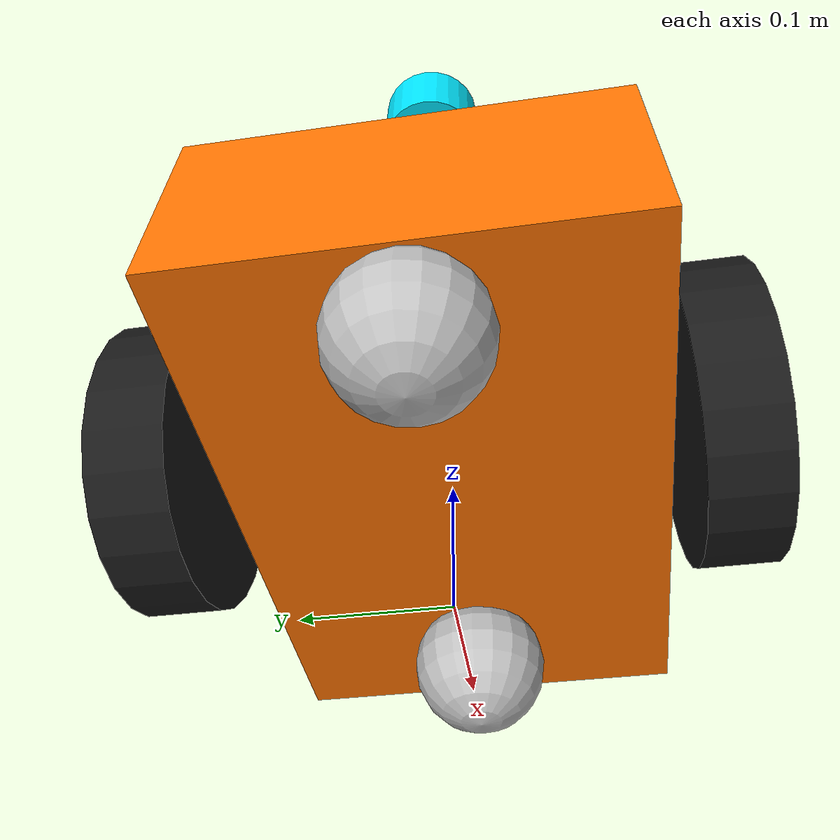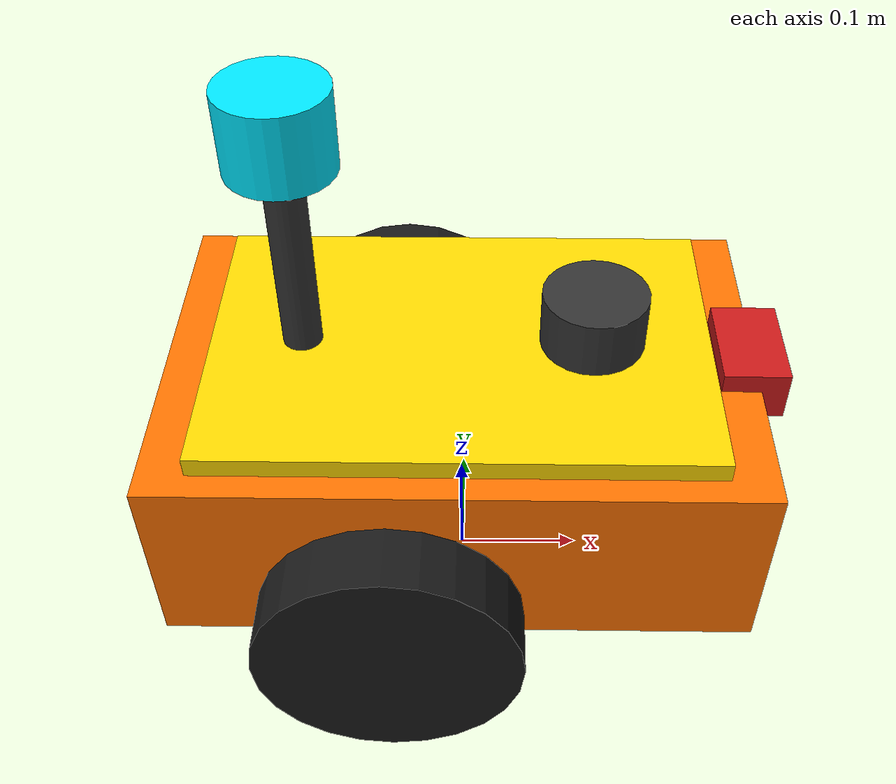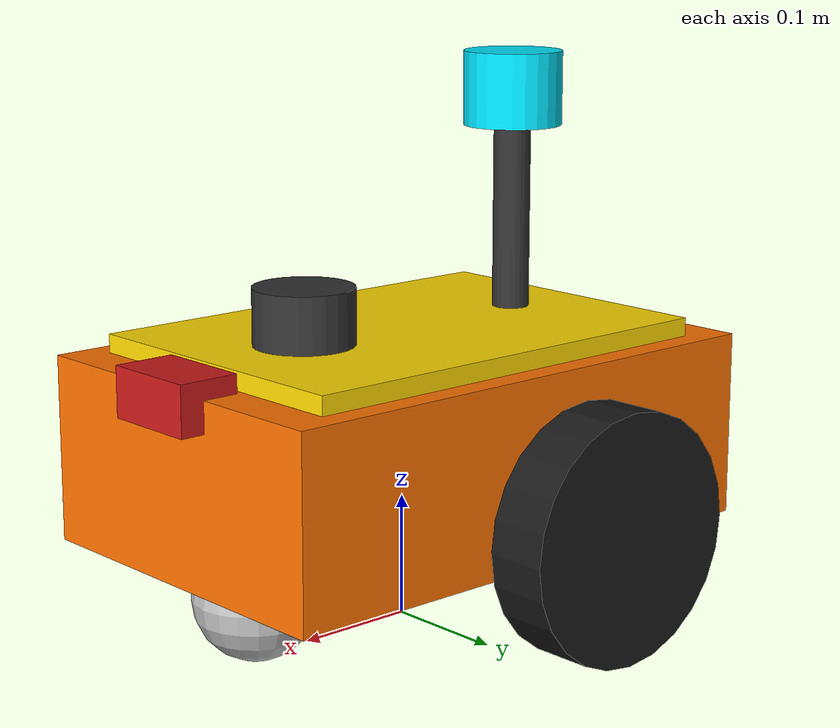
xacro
<?xml version="1.0"?>
<robot name="patrol_robot" xmlns:xacro="http://www.ros.org/wiki/xacro">

  <!-- Base footprint (projection on ground plane) -->
  <link name="base_footprint"/>

  <joint name="base_footprint_joint" type="fixed">
    <parent link="base_footprint"/>
    <child link="base_link"/>
    <origin xyz="0 0 0.1" rpy="0 0 0"/>
  </joint>

  <!-- Base link (Chassis) -->
  <link name="base_link">
    <inertial>
      <mass value="5.0"/>
      <origin xyz="0 0 0.05" rpy="0 0 0"/>
      <inertia ixx="0.05" ixy="0" ixz="0" iyy="0.08" iyz="0" izz="0.10"/>
    </inertial>
    <!-- High-visibility safety chassis -->
    <visual name="chassis_visual">
      <origin xyz="0 0 0.05" rpy="0 0 0"/>
      <geometry>
        <box size="0.45 0.30 0.15"/>
      </geometry>
      <material name="chassis_orange">
        <color rgba="1.0 0.45 0.0 1.0"/>
      </material>
    </visual>
    <!-- Top accent plate -->
    <visual name="top_plate_visual">
      <origin xyz="0 0 0.13" rpy="0 0 0"/>
      <geometry>
        <box size="0.38 0.26 0.02"/>
      </geometry>
      <material name="accent_yellow">
        <color rgba="1.0 0.85 0.0 1.0"/>
      </material>
    </visual>
    <!-- High-visibility signal beacon mast -->
    <visual name="beacon_mast_visual">
      <origin xyz="-0.12 0 0.22" rpy="0 0 0"/>
      <geometry>
        <cylinder radius="0.015" length="0.18"/>
      </geometry>
      <material name="dark_metal">
        <color rgba="0.2 0.2 0.2 1.0"/>
      </material>
    </visual>
    <!-- Glowing beacon light on top -->
    <visual name="beacon_light_visual">
      <origin xyz="-0.12 0 0.32" rpy="0 0 0"/>
      <geometry>
        <cylinder radius="0.04" length="0.06"/>
      </geometry>
      <material name="glowing_cyan">
        <color rgba="0.0 0.9 1.0 1.0"/>
      </material>
    </visual>
    <collision>
      <origin xyz="0 0 0.05" rpy="0 0 0"/>
      <geometry>
        <box size="0.45 0.30 0.15"/>
      </geometry>
    </collision>
  </link>

  <!-- Left Wheel -->
  <link name="left_wheel">
    <inertial>
      <mass value="0.8"/>
      <origin xyz="0 0 0" rpy="0 0 0"/>
      <inertia ixx="0.002" ixy="0" ixz="0" iyy="0.004" iyz="0" izz="0.002"/>
    </inertial>
    <visual>
      <origin xyz="0 0 0" rpy="1.5707963 0 0"/>
      <geometry>
        <cylinder radius="0.1" length="0.05"/>
      </geometry>
      <material name="black">
        <color rgba="0.1 0.1 0.1 1.0"/>
      </material>
    </visual>
    <collision>
      <origin xyz="0 0 0" rpy="1.5707963 0 0"/>
      <geometry>
        <cylinder radius="0.1" length="0.05"/>
      </geometry>
      <surface>
        <friction>
          <ode>
            <mu>1.0</mu>
            <mu2>1.0</mu2>
          </ode>
        </friction>
      </surface>
    </collision>
  </link>

  <joint name="left_wheel_joint" type="continuous">
    <parent link="base_link"/>
    <child link="left_wheel"/>
    <origin xyz="-0.05 0.18 0.0" rpy="0 0 0"/>
    <axis xyz="0 1 0"/>
    <limit effort="10.0" velocity="10.0"/>
  </joint>

  <!-- Right Wheel -->
  <link name="right_wheel">
    <inertial>
      <mass value="0.8"/>
      <origin xyz="0 0 0" rpy="0 0 0"/>
      <inertia ixx="0.002" ixy="0" ixz="0" iyy="0.004" iyz="0" izz="0.002"/>
    </inertial>
    <visual>
      <origin xyz="0 0 0" rpy="1.5707963 0 0"/>
      <geometry>
        <cylinder radius="0.1" length="0.05"/>
      </geometry>
      <material name="black">
        <color rgba="0.1 0.1 0.1 1.0"/>
      </material>
    </visual>
    <collision>
      <origin xyz="0 0 0" rpy="1.5707963 0 0"/>
      <geometry>
        <cylinder radius="0.1" length="0.05"/>
      </geometry>
      <surface>
        <friction>
          <ode>
            <mu>1.0</mu>
            <mu2>1.0</mu2>
          </ode>
        </friction>
      </surface>
    </collision>
  </link>

  <joint name="right_wheel_joint" type="continuous">
    <parent link="base_link"/>
    <child link="right_wheel"/>
    <origin xyz="-0.05 -0.18 0.0" rpy="0 0 0"/>
    <axis xyz="0 1 0"/>
    <limit effort="10.0" velocity="10.0"/>
  </joint>

  <!-- Front Caster Wheel (Low friction ball) -->
  <link name="front_caster">
    <inertial>
      <mass value="0.3"/>
      <origin xyz="0 0 0" rpy="0 0 0"/>
      <inertia ixx="0.0003" ixy="0" ixz="0" iyy="0.0003" iyz="0" izz="0.0003"/>
    </inertial>
    <visual>
      <origin xyz="0 0 0" rpy="0 0 0"/>
      <geometry>
        <sphere radius="0.05"/>
      </geometry>
      <material name="silver">
        <color rgba="0.75 0.75 0.75 1.0"/>
      </material>
    </visual>
    <collision>
      <origin xyz="0 0 0" rpy="0 0 0"/>
      <geometry>
        <sphere radius="0.05"/>
      </geometry>
      <surface>
        <friction>
          <ode>
            <mu>0.01</mu>
            <mu2>0.01</mu2>
          </ode>
        </friction>
      </surface>
    </collision>
  </link>

  <joint name="front_caster_joint" type="fixed">
    <parent link="base_link"/>
    <child link="front_caster"/>
    <origin xyz="0.15 0.0 -0.05" rpy="0 0 0"/>
  </joint>

  <!-- Rear Caster Wheel -->
  <link name="rear_caster">
    <inertial>
      <mass value="0.3"/>
      <origin xyz="0 0 0" rpy="0 0 0"/>
      <inertia ixx="0.0003" ixy="0" ixz="0" iyy="0.0003" iyz="0" izz="0.0003"/>
    </inertial>
    <visual>
      <origin xyz="0 0 0" rpy="0 0 0"/>
      <geometry>
        <sphere radius="0.05"/>
      </geometry>
      <material name="silver">
        <color rgba="0.75 0.75 0.75 1.0"/>
      </material>
    </visual>
    <collision>
      <origin xyz="0 0 0" rpy="0 0 0"/>
      <geometry>
        <sphere radius="0.05"/>
      </geometry>
      <surface>
        <friction>
          <ode>
            <mu>0.01</mu>
            <mu2>0.01</mu2>
          </ode>
        </friction>
      </surface>
    </collision>
  </link>

  <joint name="rear_caster_joint" type="fixed">
    <parent link="base_link"/>
    <child link="rear_caster"/>
    <origin xyz="-0.18 0.0 -0.05" rpy="0 0 0"/>
  </joint>

  <!-- Camera Link and Optical Frame -->
  <link name="camera_link">
    <inertial>
      <mass value="0.1"/>
      <origin xyz="0 0 0" rpy="0 0 0"/>
      <inertia ixx="0.0001" ixy="0" ixz="0" iyy="0.0001" iyz="0" izz="0.0001"/>
    </inertial>
    <visual>
      <origin xyz="0 0 0" rpy="0 0 0"/>
      <geometry>
        <box size="0.05 0.08 0.04"/>
      </geometry>
      <material name="camera_red">
        <color rgba="0.8 0.1 0.1 1.0"/>
      </material>
    </visual>
    <collision>
      <origin xyz="0 0 0" rpy="0 0 0"/>
      <geometry>
        <box size="0.05 0.08 0.04"/>
      </geometry>
    </collision>
  </link>

  <joint name="camera_joint" type="fixed">
    <parent link="base_link"/>
    <child link="camera_link"/>
    <origin xyz="0.22 0.0 0.12" rpy="0 0 0"/>
  </joint>

  <link name="camera_link_optical"/>
  <joint name="camera_optical_joint" type="fixed">
    <parent link="camera_link"/>
    <child link="camera_link_optical"/>
    <origin xyz="0 0 0" rpy="-1.5707963 0 -1.5707963"/>
  </joint>

  <!-- 2D LiDAR (Laser Link) -->
  <link name="laser_link">
    <inertial>
      <mass value="0.2"/>
      <origin xyz="0 0 0" rpy="0 0 0"/>
      <inertia ixx="0.0001" ixy="0" ixz="0" iyy="0.0001" iyz="0" izz="0.0001"/>
    </inertial>
    <visual>
      <origin xyz="0 0 0" rpy="0 0 0"/>
      <geometry>
        <cylinder radius="0.04" length="0.05"/>
      </geometry>
      <material name="lidar_black">
        <color rgba="0.2 0.2 0.2 1.0"/>
      </material>
    </visual>
    <collision>
      <origin xyz="0 0 0" rpy="0 0 0"/>
      <geometry>
        <cylinder radius="0.04" length="0.05"/>
      </geometry>
    </collision>
  </link>

  <joint name="laser_joint" type="fixed">
    <parent link="base_link"/>
    <child link="laser_link"/>
    <origin xyz="0.10 0.0 0.16" rpy="0 0 0"/>
  </joint>

  <!-- IMU Link -->
  <link name="imu_link">
    <inertial>
      <mass value="0.05"/>
      <origin xyz="0 0 0" rpy="0 0 0"/>
      <inertia ixx="0.00001" ixy="0" ixz="0" iyy="0.00001" iyz="0" izz="0.00001"/>
    </inertial>
    <visual>
      <origin xyz="0 0 0" rpy="0 0 0"/>
      <geometry>
        <box size="0.02 0.02 0.01"/>
      </geometry>
      <material name="green">
        <color rgba="0.1 0.8 0.1 1.0"/>
      </material>
    </visual>
  </link>

  <joint name="imu_joint" type="fixed">
    <parent link="base_link"/>
    <child link="imu_link"/>
    <origin xyz="0.0 0.0 0.08" rpy="0 0 0"/>
  </joint>

  <!-- ================= Gazebo Harmonic Sim Configuration ================= -->
  <gazebo reference="camera_link">
    <sensor name="camera" type="camera">
      <camera>
        <horizontal_fov>1.089</horizontal_fov>
        <image>
          <width>640</width>
          <height>480</height>
          <format>R8G8B8</format>
        </image>
        <clip>
          <near>0.05</near>
          <far>15.0</far>
        </clip>
      </camera>
      <always_on>1</always_on>
      <update_rate>15</update_rate>
      <visualize>true</visualize>
      <topic>/camera/image_raw</topic>
      <gz_frame_id>camera_link_optical</gz_frame_id>
    </sensor>
  </gazebo>

  <gazebo reference="laser_link">
    <sensor name="lidar" type="gpu_lidar">
      <ray>
        <scan>
          <horizontal>
            <samples>360</samples>
            <resolution>1</resolution>
            <min_angle>-3.14159</min_angle>
            <max_angle>3.14159</max_angle>
          </horizontal>
        </scan>
        <range>
          <min>0.15</min>
          <max>12.0</max>
          <resolution>0.01</resolution>
        </range>
      </ray>
      <always_on>1</always_on>
      <update_rate>10</update_rate>
      <visualize>false</visualize>
      <topic>/scan</topic>
      <gz_frame_id>laser_link</gz_frame_id>
    </sensor>
  </gazebo>

  <gazebo reference="imu_link">
    <sensor name="imu" type="imu">
      <always_on>1</always_on>
      <update_rate>50</update_rate>
      <visualize>false</visualize>
      <topic>/imu</topic>
      <gz_frame_id>imu_link</gz_frame_id>
    </sensor>
  </gazebo>

  <gazebo reference="base_link">
    <visual name="chassis_visual">
      <material>
        <ambient>1.0 0.45 0.0 1.0</ambient>
        <diffuse>1.0 0.45 0.0 1.0</diffuse>
        <specular>0.4 0.4 0.4 1.0</specular>
      </material>
    </visual>
    <visual name="top_plate_visual">
      <material>
        <ambient>1.0 0.85 0.0 1.0</ambient>
        <diffuse>1.0 0.85 0.0 1.0</diffuse>
        <specular>0.4 0.4 0.4 1.0</specular>
      </material>
    </visual>
    <visual name="beacon_light_visual">
      <material>
        <ambient>0.0 0.9 1.0 1.0</ambient>
        <diffuse>0.0 0.9 1.0 1.0</diffuse>
        <emissive>0.0 0.9 1.0 1.0</emissive>
      </material>
    </visual>
  </gazebo>

  <gazebo reference="left_wheel">
    <visual>
      <material>
        <ambient>0.1 0.1 0.1 1.0</ambient>
        <diffuse>0.15 0.15 0.15 1.0</diffuse>
      </material>
    </visual>
  </gazebo>

  <gazebo reference="right_wheel">
    <visual>
      <material>
        <ambient>0.1 0.1 0.1 1.0</ambient>
        <diffuse>0.15 0.15 0.15 1.0</diffuse>
      </material>
    </visual>
  </gazebo>

  <gazebo>
    <plugin filename="gz-sim-diff-drive-system" name="gz::sim::systems::DiffDrive">
      <left_joint>left_wheel_joint</left_joint>
      <right_joint>right_wheel_joint</right_joint>
      <wheel_separation>0.36</wheel_separation>
      <wheel_radius>0.1</wheel_radius>
      <max_linear_velocity>1.0</max_linear_velocity>
      <min_linear_velocity>-1.0</min_linear_velocity>
      <max_angular_velocity>2.0</max_angular_velocity>
      <min_angular_velocity>-2.0</min_angular_velocity>
      <topic>/cmd_vel</topic>
      <odom_topic>/odom</odom_topic>
      <tf_topic>/tf</tf_topic>
      <frame_id>odom</frame_id>
      <child_frame_id>base_footprint</child_frame_id>
      <odom_publish_frequency>20</odom_publish_frequency>
    </plugin>

    <plugin filename="gz-sim-joint-state-publisher-system" name="gz::sim::systems::JointStatePublisher">
      <topic>/joint_states</topic>
      <joint_name>left_wheel_joint</joint_name>
      <joint_name>right_wheel_joint</joint_name>
    </plugin>
  </gazebo>

</robot>
